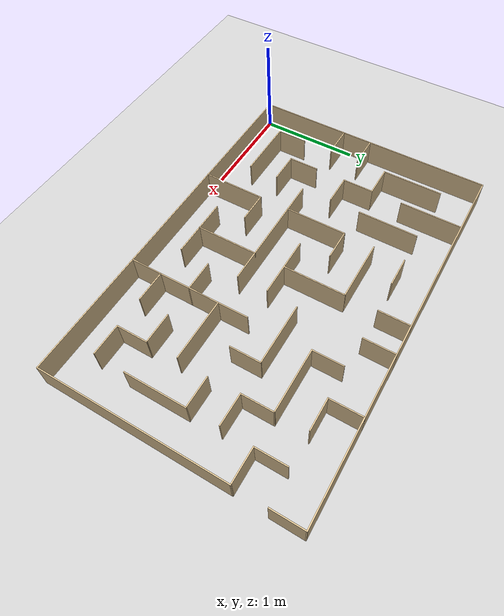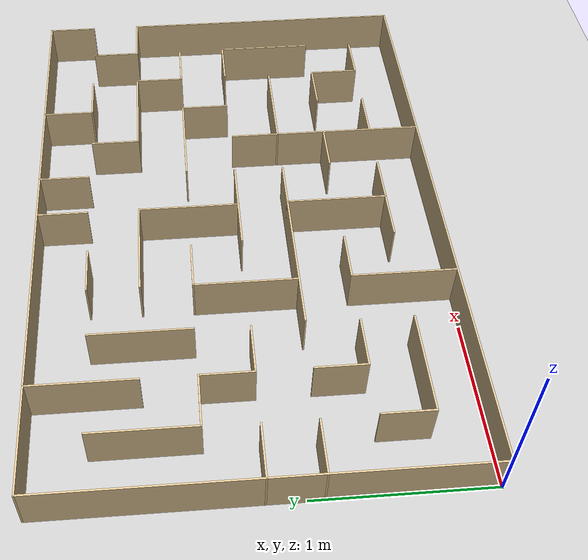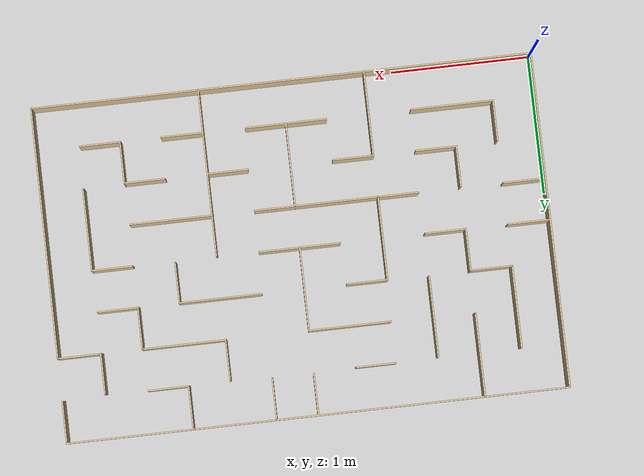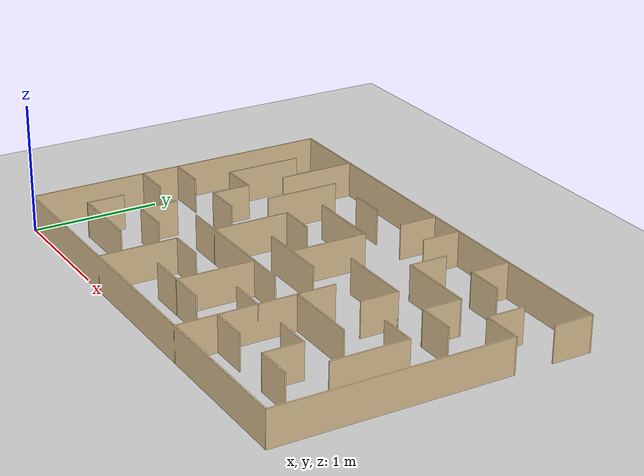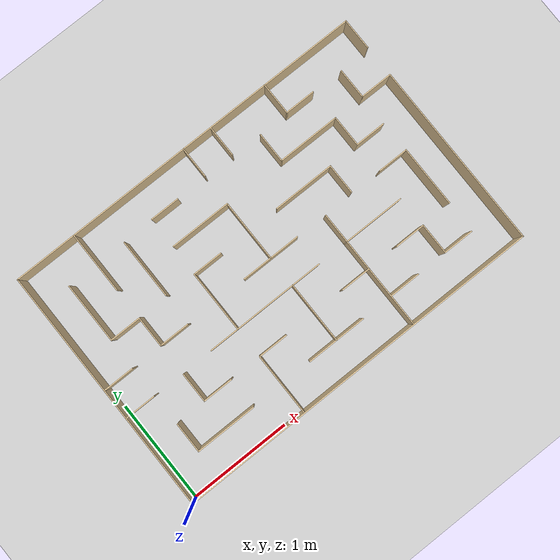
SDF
<?xml version="1.0" ?>
<sdf version="1.4">
  <world name="default">
    <scene>
      <ambient>0.5 0.5 0.5 1.0</ambient>
      <shadows>0</shadows>
    </scene>
    <include>
      <uri>model://ground_plane</uri>
    </include>
    <include>
      <uri>model://sun</uri>
    </include>

    <model name='mazeeeeee_tight'>
    <pose frame=''>1.80996 1.21 0 0 -0 0</pose>
    <link name='Wall_0'>
      <collision name='Wall_0_Collision'>
        <geometry>
          <box>
            <size>0.6 0.01 0.28</size>
          </box>
        </geometry>
        <pose frame=''>0 0 0.14 0 -0 0</pose>
      </collision>
      <visual name='Wall_0_Visual'>
        <pose frame=''>0 0 0.14 0 -0 0</pose>
        <geometry>
          <box>
            <size>0.6 0.01 0.28</size>
          </box>
        </geometry>
        <material>
          <script>
            <uri>file://media/materials/scripts/gazebo.material</uri>
            <name>Gazebo/Grey</name>
          </script>
          <ambient>0.921569 0.807843 0.615686 1</ambient>
        </material>
        <meta>
          <layer>0</layer>
        </meta>
      </visual>
      <pose frame=''>1.50004 -0.295 0 0 0 -1.5708</pose>
    </link>
    <link name='Wall_100'>
      <collision name='Wall_100_Collision'>
        <geometry>
          <box>
            <size>0.3 0.01 0.28</size>
          </box>
        </geometry>
        <pose frame=''>0 0 0.14 0 -0 0</pose>
      </collision>
      <visual name='Wall_100_Visual'>
        <pose frame=''>0 0 0.14 0 -0 0</pose>
        <geometry>
          <box>
            <size>0.3 0.01 0.28</size>
          </box>
        </geometry>
        <material>
          <script>
            <uri>file://media/materials/scripts/gazebo.material</uri>
            <name>Gazebo/Grey</name>
          </script>
          <ambient>0.921569 0.807843 0.615686 1</ambient>
        </material>
        <meta>
          <layer>0</layer>
        </meta>
      </visual>
      <pose frame=''>1.34504 -0.9 0 0 -0 0</pose>
    </link>
    <link name='Wall_11'>
      <collision name='Wall_11_Collision'>
        <geometry>
          <box>
            <size>0.32 0.01 0.28</size>
          </box>
        </geometry>
        <pose frame=''>0 0 0.14 0 -0 0</pose>
      </collision>
      <visual name='Wall_11_Visual'>
        <pose frame=''>0 0 0.14 0 -0 0</pose>
        <geometry>
          <box>
            <size>0.32 0.01 0.28</size>
          </box>
        </geometry>
        <material>
          <script>
            <uri>file://media/materials/scripts/gazebo.material</uri>
            <name>Gazebo/Grey</name>
          </script>
          <ambient>0.921569 0.807843 0.615686 1</ambient>
        </material>
        <meta>
          <layer>0</layer>
        </meta>
      </visual>
      <pose frame=''>0.900042 1.055 0 0 0 -1.5708</pose>
    </link>
    <link name='Wall_13'>
      <collision name='Wall_13_Collision'>
        <geometry>
          <box>
            <size>0.3 0.01 0.28</size>
          </box>
        </geometry>
        <pose frame=''>0 0 0.14 0 -0 0</pose>
      </collision>
      <visual name='Wall_13_Visual'>
        <pose frame=''>0 0 0.14 0 -0 0</pose>
        <geometry>
          <box>
            <size>0.3 0.01 0.28</size>
          </box>
        </geometry>
        <material>
          <script>
            <uri>file://media/materials/scripts/gazebo.material</uri>
            <name>Gazebo/Grey</name>
          </script>
          <ambient>0.921569 0.807843 0.615686 1</ambient>
        </material>
        <meta>
          <layer>0</layer>
        </meta>
      </visual>
      <pose frame=''>0.900042 0.155 0 0 0 -1.5708</pose>
    </link>
    <link name='Wall_15'>
      <collision name='Wall_15_Collision'>
        <geometry>
          <box>
            <size>0.6 0.01 0.28</size>
          </box>
        </geometry>
        <pose frame=''>0 0 0.14 0 -0 0</pose>
      </collision>
      <visual name='Wall_15_Visual'>
        <pose frame=''>0 0 0.14 0 -0 0</pose>
        <geometry>
          <box>
            <size>0.6 0.01 0.28</size>
          </box>
        </geometry>
        <material>
          <script>
            <uri>file://media/materials/scripts/gazebo.material</uri>
            <name>Gazebo/Grey</name>
          </script>
          <ambient>0.921569 0.807843 0.615686 1</ambient>
        </material>
        <meta>
          <layer>0</layer>
        </meta>
      </visual>
      <pose frame=''>0.605042 0.3 0 0 -0 0</pose>
    </link>
    <link name='Wall_18'>
      <collision name='Wall_18_Collision'>
        <geometry>
          <box>
            <size>0.3 0.01 0.28</size>
          </box>
        </geometry>
        <pose frame=''>0 0 0.14 0 -0 0</pose>
      </collision>
      <visual name='Wall_18_Visual'>
        <pose frame=''>0 0 0.14 0 -0 0</pose>
        <geometry>
          <box>
            <size>0.3 0.01 0.28</size>
          </box>
        </geometry>
        <material>
          <script>
            <uri>file://media/materials/scripts/gazebo.material</uri>
            <name>Gazebo/Grey</name>
          </script>
          <ambient>0.921569 0.807843 0.615686 1</ambient>
        </material>
        <meta>
          <layer>0</layer>
        </meta>
      </visual>
      <pose frame=''>-0.454958 -0.6 0 0 -0 0</pose>
    </link>
    <link name='Wall_2'>
      <collision name='Wall_2_Collision'>
        <geometry>
          <box>
            <size>0.3 0.01 0.28</size>
          </box>
        </geometry>
        <pose frame=''>0 0 0.14 0 -0 0</pose>
      </collision>
      <visual name='Wall_2_Visual'>
        <pose frame=''>0 0 0.14 0 -0 0</pose>
        <geometry>
          <box>
            <size>0.3 0.01 0.28</size>
          </box>
        </geometry>
        <material>
          <script>
            <uri>file://media/materials/scripts/gazebo.material</uri>
            <name>Gazebo/Grey</name>
          </script>
          <ambient>0.921569 0.807843 0.615686 1</ambient>
        </material>
        <meta>
          <layer>0</layer>
        </meta>
      </visual>
      <pose frame=''>1.35504 0 0 0 -0 0</pose>
    </link>
    <link name='Wall_20'>
      <collision name='Wall_20_Collision'>
        <geometry>
          <box>
            <size>0.62 0.01 0.28</size>
          </box>
        </geometry>
        <pose frame=''>0 0 0.14 0 -0 0</pose>
      </collision>
      <visual name='Wall_20_Visual'>
        <pose frame=''>0 0 0.14 0 -0 0</pose>
        <geometry>
          <box>
            <size>0.62 0.01 0.28</size>
          </box>
        </geometry>
        <material>
          <script>
            <uri>file://media/materials/scripts/gazebo.material</uri>
            <name>Gazebo/Grey</name>
          </script>
          <ambient>0.921569 0.807843 0.615686 1</ambient>
        </material>
        <meta>
          <layer>0</layer>
        </meta>
      </visual>
      <pose frame=''>-0.599958 -0.905 0 0 -0 1.5708</pose>
    </link>
    <link name='Wall_22'>
      <collision name='Wall_22_Collision'>
        <geometry>
          <box>
            <size>0.29 0.01 0.28</size>
          </box>
        </geometry>
        <pose frame=''>0 0 0.14 0 -0 0</pose>
      </collision>
      <visual name='Wall_22_Visual'>
        <pose frame=''>0 0 0.14 0 -0 0</pose>
        <geometry>
          <box>
            <size>0.29 0.01 0.28</size>
          </box>
        </geometry>
        <material>
          <script>
            <uri>file://media/materials/scripts/gazebo.material</uri>
            <name>Gazebo/Grey</name>
          </script>
          <ambient>0.921569 0.807843 0.615686 1</ambient>
        </material>
        <meta>
          <layer>0</layer>
        </meta>
      </visual>
      <pose frame=''>-0.449958 0.9 0 0 -0 0</pose>
    </link>
    <link name='Wall_24'>
      <collision name='Wall_24_Collision'>
        <geometry>
          <box>
            <size>0.59 0.01 0.28</size>
          </box>
        </geometry>
        <pose frame=''>0 0 0.14 0 -0 0</pose>
      </collision>
      <visual name='Wall_24_Visual'>
        <pose frame=''>0 0 0.14 0 -0 0</pose>
        <geometry>
          <box>
            <size>0.59 0.01 0.28</size>
          </box>
        </geometry>
        <material>
          <script>
            <uri>file://media/materials/scripts/gazebo.material</uri>
            <name>Gazebo/Grey</name>
          </script>
          <ambient>0.921569 0.807843 0.615686 1</ambient>
        </material>
        <meta>
          <layer>0</layer>
        </meta>
      </visual>
      <pose frame=''>-0.899958 0.6 0 0 0 -1.5708</pose>
    </link>
    <link name='Wall_26'>
      <collision name='Wall_26_Collision'>
        <geometry>
          <box>
            <size>0.3 0.01 0.28</size>
          </box>
        </geometry>
        <pose frame=''>0 0 0.14 0 -0 0</pose>
      </collision>
      <visual name='Wall_26_Visual'>
        <pose frame=''>0 0 0.14 0 -0 0</pose>
        <geometry>
          <box>
            <size>0.3 0.01 0.28</size>
          </box>
        </geometry>
        <material>
          <script>
            <uri>file://media/materials/scripts/gazebo.material</uri>
            <name>Gazebo/Grey</name>
          </script>
          <ambient>0.921569 0.807843 0.615686 1</ambient>
        </material>
        <meta>
          <layer>0</layer>
        </meta>
      </visual>
      <pose frame=''>-1.05496 0 0 0 -0 0</pose>
    </link>
    <link name='Wall_28'>
      <collision name='Wall_28_Collision'>
        <geometry>
          <box>
            <size>0.31 0.01 0.28</size>
          </box>
        </geometry>
        <pose frame=''>0 0 0.14 0 -0 0</pose>
      </collision>
      <visual name='Wall_28_Visual'>
        <pose frame=''>0 0 0.14 0 -0 0</pose>
        <geometry>
          <box>
            <size>0.31 0.01 0.28</size>
          </box>
        </geometry>
        <material>
          <script>
            <uri>file://media/materials/scripts/gazebo.material</uri>
            <name>Gazebo/Grey</name>
          </script>
          <ambient>0.921569 0.807843 0.615686 1</ambient>
        </material>
        <meta>
          <layer>0</layer>
        </meta>
      </visual>
      <pose frame=''>-1.19996 0.15 0 0 0 -1.5708</pose>
    </link>
    <link name='Wall_30'>
      <collision name='Wall_30_Collision'>
        <geometry>
          <box>
            <size>0.31 0.01 0.28</size>
          </box>
        </geometry>
        <pose frame=''>0 0 0.14 0 -0 0</pose>
      </collision>
      <visual name='Wall_30_Visual'>
        <pose frame=''>0 0 0.14 0 -0 0</pose>
        <geometry>
          <box>
            <size>0.31 0.01 0.28</size>
          </box>
        </geometry>
        <material>
          <script>
            <uri>file://media/materials/scripts/gazebo.material</uri>
            <name>Gazebo/Grey</name>
          </script>
          <ambient>0.921569 0.807843 0.615686 1</ambient>
        </material>
        <meta>
          <layer>0</layer>
        </meta>
      </visual>
      <pose frame=''>-1.34996 0.3 0 0 -0 0</pose>
    </link>
    <link name='Wall_32'>
      <collision name='Wall_32_Collision'>
        <geometry>
          <box>
            <size>0.6 0.01 0.28</size>
          </box>
        </geometry>
        <pose frame=''>0 0 0.14 0 -0 0</pose>
      </collision>
      <visual name='Wall_32_Visual'>
        <pose frame=''>0 0 0.14 0 -0 0</pose>
        <geometry>
          <box>
            <size>0.6 0.01 0.28</size>
          </box>
        </geometry>
        <material>
          <script>
            <uri>file://media/materials/scripts/gazebo.material</uri>
            <name>Gazebo/Grey</name>
          </script>
          <ambient>0.921569 0.807843 0.615686 1</ambient>
        </material>
        <meta>
          <layer>0</layer>
        </meta>
      </visual>
      <pose frame=''>-1.49996 0.595 0 0 0 -1.5708</pose>
    </link>
    <link name='Wall_34'>
      <collision name='Wall_34_Collision'>
        <geometry>
          <box>
            <size>0.3 0.01 0.28</size>
          </box>
        </geometry>
        <pose frame=''>0 0 0.14 0 -0 0</pose>
      </collision>
      <visual name='Wall_34_Visual'>
        <pose frame=''>0 0 0.14 0 -0 0</pose>
        <geometry>
          <box>
            <size>0.3 0.01 0.28</size>
          </box>
        </geometry>
        <material>
          <script>
            <uri>file://media/materials/scripts/gazebo.material</uri>
            <name>Gazebo/Grey</name>
          </script>
          <ambient>0.921569 0.807843 0.615686 1</ambient>
        </material>
        <meta>
          <layer>0</layer>
        </meta>
      </visual>
      <pose frame=''>-1.05496 -0.6 0 0 -0 0</pose>
    </link>
    <link name='Wall_36'>
      <collision name='Wall_36_Collision'>
        <geometry>
          <box>
            <size>0.3 0.01 0.28</size>
          </box>
        </geometry>
        <pose frame=''>0 0 0.14 0 -0 0</pose>
      </collision>
      <visual name='Wall_36_Visual'>
        <pose frame=''>0 0 0.14 0 -0 0</pose>
        <geometry>
          <box>
            <size>0.3 0.01 0.28</size>
          </box>
        </geometry>
        <material>
          <script>
            <uri>file://media/materials/scripts/gazebo.material</uri>
            <name>Gazebo/Grey</name>
          </script>
          <ambient>0.921569 0.807843 0.615686 1</ambient>
        </material>
        <meta>
          <layer>0</layer>
        </meta>
      </visual>
      <pose frame=''>-1.19996 -0.455 0 0 0 -1.5708</pose>
    </link>
    <link name='Wall_38'>
      <collision name='Wall_38_Collision'>
        <geometry>
          <box>
            <size>0.6 0.01 0.28</size>
          </box>
        </geometry>
        <pose frame=''>0 0 0.14 0 -0 0</pose>
      </collision>
      <visual name='Wall_38_Visual'>
        <pose frame=''>0 0 0.14 0 -0 0</pose>
        <geometry>
          <box>
            <size>0.6 0.01 0.28</size>
          </box>
        </geometry>
        <material>
          <script>
            <uri>file://media/materials/scripts/gazebo.material</uri>
            <name>Gazebo/Grey</name>
          </script>
          <ambient>0.921569 0.807843 0.615686 1</ambient>
        </material>
        <meta>
          <layer>0</layer>
        </meta>
      </visual>
      <pose frame=''>-1.20496 -0.9 0 0 -0 0</pose>
    </link>
    <link name='Wall_40'>
      <collision name='Wall_40_Collision'>
        <geometry>
          <box>
            <size>0.3 0.01 0.28</size>
          </box>
        </geometry>
        <pose frame=''>0 0 0.14 0 -0 0</pose>
      </collision>
      <visual name='Wall_40_Visual'>
        <pose frame=''>0 0 0.14 0 -0 0</pose>
        <geometry>
          <box>
            <size>0.3 0.01 0.28</size>
          </box>
        </geometry>
        <material>
          <script>
            <uri>file://media/materials/scripts/gazebo.material</uri>
            <name>Gazebo/Grey</name>
          </script>
          <ambient>0.921569 0.807843 0.615686 1</ambient>
        </material>
        <meta>
          <layer>0</layer>
        </meta>
      </visual>
      <pose frame=''>-1.49996 -0.755 0 0 0 -1.5708</pose>
    </link>
    <link name='Wall_42'>
      <collision name='Wall_42_Collision'>
        <geometry>
          <box>
            <size>0.31 0.01 0.28</size>
          </box>
        </geometry>
        <pose frame=''>0 0 0.14 0 -0 0</pose>
      </collision>
      <visual name='Wall_42_Visual'>
        <pose frame=''>0 0 0.14 0 -0 0</pose>
        <geometry>
          <box>
            <size>0.31 0.01 0.28</size>
          </box>
        </geometry>
        <material>
          <script>
            <uri>file://media/materials/scripts/gazebo.material</uri>
            <name>Gazebo/Grey</name>
          </script>
          <ambient>0.921569 0.807843 0.615686 1</ambient>
        </material>
        <meta>
          <layer>0</layer>
        </meta>
      </visual>
      <pose frame=''>0.300042 1.06 0 0 0 -1.5708</pose>
    </link>
    <link name='Wall_44'>
      <collision name='Wall_44_Collision'>
        <geometry>
          <box>
            <size>0.31 0.01 0.28</size>
          </box>
        </geometry>
        <pose frame=''>0 0 0.14 0 -0 0</pose>
      </collision>
      <visual name='Wall_44_Visual'>
        <pose frame=''>0 0 0.14 0 -0 0</pose>
        <geometry>
          <box>
            <size>0.31 0.01 0.28</size>
          </box>
        </geometry>
        <material>
          <script>
            <uri>file://media/materials/scripts/gazebo.material</uri>
            <name>Gazebo/Grey</name>
          </script>
          <ambient>0.921569 0.807843 0.615686 1</ambient>
        </material>
        <meta>
          <layer>0</layer>
        </meta>
      </visual>
      <pose frame=''>4.2e-05 1.06 0 0 0 -1.5708</pose>
    </link>
    <link name='Wall_46'>
      <collision name='Wall_46_Collision'>
        <geometry>
          <box>
            <size>0.61 0.01 0.28</size>
          </box>
        </geometry>
        <pose frame=''>0 0 0.14 0 -0 0</pose>
      </collision>
      <visual name='Wall_46_Visual'>
        <pose frame=''>0 0 0.14 0 -0 0</pose>
        <geometry>
          <box>
            <size>0.61 0.01 0.28</size>
          </box>
        </geometry>
        <material>
          <script>
            <uri>file://media/materials/scripts/gazebo.material</uri>
            <name>Gazebo/Grey</name>
          </script>
          <ambient>0.921569 0.807843 0.615686 1</ambient>
        </material>
        <meta>
          <layer>0</layer>
        </meta>
      </visual>
      <pose frame=''>-1.19996 0.91 0 0 0 -1.5708</pose>
    </link>
    <link name='Wall_48'>
      <collision name='Wall_48_Collision'>
        <geometry>
          <box>
            <size>0.310167 0.01 0.28</size>
          </box>
        </geometry>
        <pose frame=''>0 0 0.14 0 -0 0</pose>
      </collision>
      <visual name='Wall_48_Visual'>
        <pose frame=''>0 0 0.14 0 -0 0</pose>
        <geometry>
          <box>
            <size>0.310167 0.01 0.28</size>
          </box>
        </geometry>
        <material>
          <script>
            <uri>file://media/materials/scripts/gazebo.material</uri>
            <name>Gazebo/Grey</name>
          </script>
          <ambient>0.921569 0.807843 0.615686 1</ambient>
        </material>
        <meta>
          <layer>0</layer>
        </meta>
      </visual>
      <pose frame=''>-1.65996 -0.3 0 0 -0 0</pose>
    </link>
    <link name='Wall_5'>
      <collision name='Wall_5_Collision'>
        <geometry>
          <box>
            <size>0.32 0.01 0.28</size>
          </box>
        </geometry>
        <pose frame=''>0 0 0.14 0 -0 0</pose>
      </collision>
      <visual name='Wall_5_Visual'>
        <pose frame=''>0 0 0.14 0 -0 0</pose>
        <geometry>
          <box>
            <size>0.32 0.01 0.28</size>
          </box>
        </geometry>
        <material>
          <script>
            <uri>file://media/materials/scripts/gazebo.material</uri>
            <name>Gazebo/Grey</name>
          </script>
          <ambient>0.921569 0.807843 0.615686 1</ambient>
        </material>
        <meta>
          <layer>0</layer>
        </meta>
      </visual>
      <pose frame=''>1.65504 0.6 0 0 -0 0</pose>
    </link>
    <link name='Wall_50'>
      <collision name='Wall_50_Collision'>
        <geometry>
          <box>
            <size>1.82 0.01 0.28</size>
          </box>
        </geometry>
        <pose frame=''>0 0 0.14 0 -0 0</pose>
      </collision>
      <visual name='Wall_50_Visual'>
        <pose frame=''>0 0 0.14 0 -0 0</pose>
        <geometry>
          <box>
            <size>1.82 0.01 0.28</size>
          </box>
        </geometry>
        <material>
          <script>
            <uri>file://media/materials/scripts/gazebo.material</uri>
            <name>Gazebo/Grey</name>
          </script>
          <ambient>0.921569 0.807843 0.615686 1</ambient>
        </material>
        <meta>
          <layer>0</layer>
        </meta>
      </visual>
      <pose frame=''>1.81004 -0.305 0 0 -0 1.5708</pose>
    </link>
    <link name='Wall_52'>
      <collision name='Wall_52_Collision'>
        <geometry>
          <box>
            <size>0.31 0.01 0.28</size>
          </box>
        </geometry>
        <pose frame=''>0 0 0.14 0 -0 0</pose>
      </collision>
      <visual name='Wall_52_Visual'>
        <pose frame=''>0 0 0.14 0 -0 0</pose>
        <geometry>
          <box>
            <size>0.31 0.01 0.28</size>
          </box>
        </geometry>
        <material>
          <script>
            <uri>file://media/materials/scripts/gazebo.material</uri>
            <name>Gazebo/Grey</name>
          </script>
          <ambient>0.921569 0.807843 0.615686 1</ambient>
        </material>
        <meta>
          <layer>0</layer>
        </meta>
      </visual>
      <pose frame=''>-1.65996 0 0 0 -0 0</pose>
    </link>
    <link name='Wall_54'>
      <collision name='Wall_54_Collision'>
        <geometry>
          <box>
            <size>2.43 0.01 0.28</size>
          </box>
        </geometry>
        <pose frame=''>0 0 0.14 0 -0 0</pose>
      </collision>
      <visual name='Wall_54_Visual'>
        <pose frame=''>0 0 0.14 0 -0 0</pose>
        <geometry>
          <box>
            <size>2.43 0.01 0.28</size>
          </box>
        </geometry>
        <material>
          <script>
            <uri>file://media/materials/scripts/gazebo.material</uri>
            <name>Gazebo/Grey</name>
          </script>
          <ambient>0.921569 0.807843 0.615686 1</ambient>
        </material>
        <meta>
          <layer>0</layer>
        </meta>
      </visual>
      <pose frame=''>-1.80996 0 0 0 0 -1.5708</pose>
    </link>
    <link name='Wall_56'>
      <collision name='Wall_56_Collision'>
        <geometry>
          <box>
            <size>3.63 0.01 0.28</size>
          </box>
        </geometry>
        <pose frame=''>0 0 0.14 0 -0 0</pose>
      </collision>
      <visual name='Wall_56_Visual'>
        <pose frame=''>0 0 0.14 0 -0 0</pose>
        <geometry>
          <box>
            <size>3.63 0.01 0.28</size>
          </box>
        </geometry>
        <material>
          <script>
            <uri>file://media/materials/scripts/gazebo.material</uri>
            <name>Gazebo/Grey</name>
          </script>
          <ambient>0.921569 0.807843 0.615686 1</ambient>
        </material>
        <meta>
          <layer>0</layer>
        </meta>
      </visual>
      <pose frame=''>4.2e-05 1.21 0 0 -0 3.14159</pose>
    </link>
    <link name='Wall_58'>
      <collision name='Wall_58_Collision'>
        <geometry>
          <box>
            <size>0.31 0.01 0.28</size>
          </box>
        </geometry>
        <pose frame=''>0 0 0.14 0 -0 0</pose>
      </collision>
      <visual name='Wall_58_Visual'>
        <pose frame=''>0 0 0.14 0 -0 0</pose>
        <geometry>
          <box>
            <size>0.31 0.01 0.28</size>
          </box>
        </geometry>
        <material>
          <script>
            <uri>file://media/materials/scripts/gazebo.material</uri>
            <name>Gazebo/Grey</name>
          </script>
          <ambient>0.921569 0.807843 0.615686 1</ambient>
        </material>
        <meta>
          <layer>0</layer>
        </meta>
      </visual>
      <pose frame=''>1.81004 1.06 0 0 -0 1.5708</pose>
    </link>
    <link name='Wall_60'>
      <collision name='Wall_60_Collision'>
        <geometry>
          <box>
            <size>3.63 0.01 0.28</size>
          </box>
        </geometry>
        <pose frame=''>0 0 0.14 0 -0 0</pose>
      </collision>
      <visual name='Wall_60_Visual'>
        <pose frame=''>0 0 0.14 0 -0 0</pose>
        <geometry>
          <box>
            <size>3.63 0.01 0.28</size>
          </box>
        </geometry>
        <material>
          <script>
            <uri>file://media/materials/scripts/gazebo.material</uri>
            <name>Gazebo/Grey</name>
          </script>
          <ambient>0.921569 0.807843 0.615686 1</ambient>
        </material>
        <meta>
          <layer>0</layer>
        </meta>
      </visual>
      <pose frame=''>4.2e-05 -1.21 0 0 -0 0</pose>
    </link>
    <link name='Wall_63'>
      <collision name='Wall_63_Collision'>
        <geometry>
          <box>
            <size>0.3 0.01 0.28</size>
          </box>
        </geometry>
        <pose frame=''>0 0 0.14 0 -0 0</pose>
      </collision>
      <visual name='Wall_63_Visual'>
        <pose frame=''>0 0 0.14 0 -0 0</pose>
        <geometry>
          <box>
            <size>0.3 0.01 0.28</size>
          </box>
        </geometry>
        <material>
          <script>
            <uri>file://media/materials/scripts/gazebo.material</uri>
            <name>Gazebo/Grey</name>
          </script>
          <ambient>0.921569 0.807843 0.615686 1</ambient>
        </material>
        <meta>
          <layer>0</layer>
        </meta>
      </visual>
      <pose frame=''>0.600042 0.745 0 0 0 -1.5708</pose>
    </link>
    <link name='Wall_65'>
      <collision name='Wall_65_Collision'>
        <geometry>
          <box>
            <size>0.61 0.01 0.28</size>
          </box>
        </geometry>
        <pose frame=''>0 0 0.14 0 -0 0</pose>
      </collision>
      <visual name='Wall_65_Visual'>
        <pose frame=''>0 0 0.14 0 -0 0</pose>
        <geometry>
          <box>
            <size>0.61 0.01 0.28</size>
          </box>
        </geometry>
        <material>
          <script>
            <uri>file://media/materials/scripts/gazebo.material</uri>
            <name>Gazebo/Grey</name>
          </script>
          <ambient>0.921569 0.807843 0.615686 1</ambient>
        </material>
        <meta>
          <layer>0</layer>
        </meta>
      </visual>
      <pose frame=''>0.900042 0.6 0 0 -0 0</pose>
    </link>
    <link name='Wall_68'>
      <collision name='Wall_68_Collision'>
        <geometry>
          <box>
            <size>0.31 0.01 0.28</size>
          </box>
        </geometry>
        <pose frame=''>0 0 0.14 0 -0 0</pose>
      </collision>
      <visual name='Wall_68_Visual'>
        <pose frame=''>0 0 0.14 0 -0 0</pose>
        <geometry>
          <box>
            <size>0.31 0.01 0.28</size>
          </box>
        </geometry>
        <material>
          <script>
            <uri>file://media/materials/scripts/gazebo.material</uri>
            <name>Gazebo/Grey</name>
          </script>
          <ambient>0.921569 0.807843 0.615686 1</ambient>
        </material>
        <meta>
          <layer>0</layer>
        </meta>
      </visual>
      <pose frame=''>1.20004 0.45 0 0 0 -1.5708</pose>
    </link>
    <link name='Wall_7'>
      <collision name='Wall_7_Collision'>
        <geometry>
          <box>
            <size>0.3 0.01 0.28</size>
          </box>
        </geometry>
        <pose frame=''>0 0 0.14 0 -0 0</pose>
      </collision>
      <visual name='Wall_7_Visual'>
        <pose frame=''>0 0 0.14 0 -0 0</pose>
        <geometry>
          <box>
            <size>0.3 0.01 0.28</size>
          </box>
        </geometry>
        <material>
          <script>
            <uri>file://media/materials/scripts/gazebo.material</uri>
            <name>Gazebo/Grey</name>
          </script>
          <ambient>0.921569 0.807843 0.615686 1</ambient>
        </material>
        <meta>
          <layer>0</layer>
        </meta>
      </visual>
      <pose frame=''>1.50004 0.745 0 0 0 -1.5708</pose>
    </link>
    <link name='Wall_70'>
      <collision name='Wall_70_Collision'>
        <geometry>
          <box>
            <size>0.3 0.01 0.28</size>
          </box>
        </geometry>
        <pose frame=''>0 0 0.14 0 -0 0</pose>
      </collision>
      <visual name='Wall_70_Visual'>
        <pose frame=''>0 0 0.14 0 -0 0</pose>
        <geometry>
          <box>
            <size>0.3 0.01 0.28</size>
          </box>
        </geometry>
        <material>
          <script>
            <uri>file://media/materials/scripts/gazebo.material</uri>
            <name>Gazebo/Grey</name>
          </script>
          <ambient>0.921569 0.807843 0.615686 1</ambient>
        </material>
        <meta>
          <layer>0</layer>
        </meta>
      </visual>
      <pose frame=''>1.34504 0.3 0 0 -0 0</pose>
    </link>
    <link name='Wall_72'>
      <collision name='Wall_72_Collision'>
        <geometry>
          <box>
            <size>0.3 0.01 0.28</size>
          </box>
        </geometry>
        <pose frame=''>0 0 0.14 0 -0 0</pose>
      </collision>
      <visual name='Wall_72_Visual'>
        <pose frame=''>0 0 0.14 0 -0 0</pose>
        <geometry>
          <box>
            <size>0.3 0.01 0.28</size>
          </box>
        </geometry>
        <material>
          <script>
            <uri>file://media/materials/scripts/gazebo.material</uri>
            <name>Gazebo/Grey</name>
          </script>
          <ambient>0.921569 0.807843 0.615686 1</ambient>
        </material>
        <meta>
          <layer>0</layer>
        </meta>
      </visual>
      <pose frame=''>0.455042 -0.6 0 0 -0 0</pose>
    </link>
    <link name='Wall_74'>
      <collision name='Wall_74_Collision'>
        <geometry>
          <box>
            <size>0.6 0.01 0.28</size>
          </box>
        </geometry>
        <pose frame=''>0 0 0.14 0 -0 0</pose>
      </collision>
      <visual name='Wall_74_Visual'>
        <pose frame=''>0 0 0.14 0 -0 0</pose>
        <geometry>
          <box>
            <size>0.6 0.01 0.28</size>
          </box>
        </geometry>
        <material>
          <script>
            <uri>file://media/materials/scripts/gazebo.material</uri>
            <name>Gazebo/Grey</name>
          </script>
          <ambient>0.921569 0.807843 0.615686 1</ambient>
        </material>
        <meta>
          <layer>0</layer>
        </meta>
      </visual>
      <pose frame=''>0.895042 -0.3 0 0 -0 0</pose>
    </link>
    <link name='Wall_76'>
      <collision name='Wall_76_Collision'>
        <geometry>
          <box>
            <size>0.31 0.01 0.28</size>
          </box>
        </geometry>
        <pose frame=''>0 0 0.14 0 -0 0</pose>
      </collision>
      <visual name='Wall_76_Visual'>
        <pose frame=''>0 0 0.14 0 -0 0</pose>
        <geometry>
          <box>
            <size>0.31 0.01 0.28</size>
          </box>
        </geometry>
        <material>
          <script>
            <uri>file://media/materials/scripts/gazebo.material</uri>
            <name>Gazebo/Grey</name>
          </script>
          <ambient>0.921569 0.807843 0.615686 1</ambient>
        </material>
        <meta>
          <layer>0</layer>
        </meta>
      </visual>
      <pose frame=''>0.750042 -0.9 0 0 -0 0</pose>
    </link>
    <link name='Wall_78'>
      <collision name='Wall_78_Collision'>
        <geometry>
          <box>
            <size>1.21 0.01 0.28</size>
          </box>
        </geometry>
        <pose frame=''>0 0 0.14 0 -0 0</pose>
      </collision>
      <visual name='Wall_78_Visual'>
        <pose frame=''>0 0 0.14 0 -0 0</pose>
        <geometry>
          <box>
            <size>1.21 0.01 0.28</size>
          </box>
        </geometry>
        <material>
          <script>
            <uri>file://media/materials/scripts/gazebo.material</uri>
            <name>Gazebo/Grey</name>
          </script>
          <ambient>0.921569 0.807843 0.615686 1</ambient>
        </material>
        <meta>
          <layer>0</layer>
        </meta>
      </visual>
      <pose frame=''>0.600042 -0.61 0 0 0 -1.5708</pose>
    </link>
    <link name='Wall_80'>
      <collision name='Wall_80_Collision'>
        <geometry>
          <box>
            <size>0.3 0.01 0.28</size>
          </box>
        </geometry>
        <pose frame=''>0 0 0.14 0 -0 0</pose>
      </collision>
      <visual name='Wall_80_Visual'>
        <pose frame=''>0 0 0.14 0 -0 0</pose>
        <geometry>
          <box>
            <size>0.3 0.01 0.28</size>
          </box>
        </geometry>
        <material>
          <script>
            <uri>file://media/materials/scripts/gazebo.material</uri>
            <name>Gazebo/Grey</name>
          </script>
          <ambient>0.921569 0.807843 0.615686 1</ambient>
        </material>
        <meta>
          <layer>0</layer>
        </meta>
      </visual>
      <pose frame=''>-0.454958 0.3 0 0 -0 0</pose>
    </link>
    <link name='Wall_82'>
      <collision name='Wall_82_Collision'>
        <geometry>
          <box>
            <size>0.59 0.01 0.28</size>
          </box>
        </geometry>
        <pose frame=''>0 0 0.14 0 -0 0</pose>
      </collision>
      <visual name='Wall_82_Visual'>
        <pose frame=''>0 0 0.14 0 -0 0</pose>
        <geometry>
          <box>
            <size>0.59 0.01 0.28</size>
          </box>
        </geometry>
        <material>
          <script>
            <uri>file://media/materials/scripts/gazebo.material</uri>
            <name>Gazebo/Grey</name>
          </script>
          <ambient>0.921569 0.807843 0.615686 1</ambient>
        </material>
        <meta>
          <layer>0</layer>
        </meta>
      </visual>
      <pose frame=''>4.2e-05 0 0 0 -0 0</pose>
    </link>
    <link name='Wall_84'>
      <collision name='Wall_84_Collision'>
        <geometry>
          <box>
            <size>0.61 0.01 0.28</size>
          </box>
        </geometry>
        <pose frame=''>0 0 0.14 0 -0 0</pose>
      </collision>
      <visual name='Wall_84_Visual'>
        <pose frame=''>0 0 0.14 0 -0 0</pose>
        <geometry>
          <box>
            <size>0.61 0.01 0.28</size>
          </box>
        </geometry>
        <material>
          <script>
            <uri>file://media/materials/scripts/gazebo.material</uri>
            <name>Gazebo/Grey</name>
          </script>
          <ambient>0.921569 0.807843 0.615686 1</ambient>
        </material>
        <meta>
          <layer>0</layer>
        </meta>
      </visual>
      <pose frame=''>4.2e-05 0.3 0 0 0 -1.5708</pose>
    </link>
    <link name='Wall_86'>
      <collision name='Wall_86_Collision'>
        <geometry>
          <box>
            <size>0.6 0.01 0.28</size>
          </box>
        </geometry>
        <pose frame=''>0 0 0.14 0 -0 0</pose>
      </collision>
      <visual name='Wall_86_Visual'>
        <pose frame=''>0 0 0.14 0 -0 0</pose>
        <geometry>
          <box>
            <size>0.6 0.01 0.28</size>
          </box>
        </geometry>
        <material>
          <script>
            <uri>file://media/materials/scripts/gazebo.material</uri>
            <name>Gazebo/Grey</name>
          </script>
          <ambient>0.921569 0.807843 0.615686 1</ambient>
        </material>
        <meta>
          <layer>0</layer>
        </meta>
      </visual>
      <pose frame=''>-0.294958 0.6 0 0 -0 0</pose>
    </link>
    <link name='Wall_88'>
      <collision name='Wall_88_Collision'>
        <geometry>
          <box>
            <size>0.59 0.01 0.28</size>
          </box>
        </geometry>
        <pose frame=''>0 0 0.14 0 -0 0</pose>
      </collision>
      <visual name='Wall_88_Visual'>
        <pose frame=''>0 0 0.14 0 -0 0</pose>
        <geometry>
          <box>
            <size>0.59 0.01 0.28</size>
          </box>
        </geometry>
        <material>
          <script>
            <uri>file://media/materials/scripts/gazebo.material</uri>
            <name>Gazebo/Grey</name>
          </script>
          <ambient>0.921569 0.807843 0.615686 1</ambient>
        </material>
        <meta>
          <layer>0</layer>
        </meta>
      </visual>
      <pose frame=''>4.2e-05 -0.9 0 0 -0 0</pose>
    </link>
    <link name='Wall_9'>
      <collision name='Wall_9_Collision'>
        <geometry>
          <box>
            <size>0.3 0.01 0.28</size>
          </box>
        </geometry>
        <pose frame=''>0 0 0.14 0 -0 0</pose>
      </collision>
      <visual name='Wall_9_Visual'>
        <pose frame=''>0 0 0.14 0 -0 0</pose>
        <geometry>
          <box>
            <size>0.3 0.01 0.28</size>
          </box>
        </geometry>
        <material>
          <script>
            <uri>file://media/materials/scripts/gazebo.material</uri>
            <name>Gazebo/Grey</name>
          </script>
          <ambient>0.921569 0.807843 0.615686 1</ambient>
        </material>
        <meta>
          <layer>0</layer>
        </meta>
      </visual>
      <pose frame=''>1.04504 0.9 0 0 -0 0</pose>
    </link>
    <link name='Wall_90'>
      <collision name='Wall_90_Collision'>
        <geometry>
          <box>
            <size>0.61 0.01 0.28</size>
          </box>
        </geometry>
        <pose frame=''>0 0 0.14 0 -0 0</pose>
      </collision>
      <visual name='Wall_90_Visual'>
        <pose frame=''>0 0 0.14 0 -0 0</pose>
        <geometry>
          <box>
            <size>0.61 0.01 0.28</size>
          </box>
        </geometry>
        <material>
          <script>
            <uri>file://media/materials/scripts/gazebo.material</uri>
            <name>Gazebo/Grey</name>
          </script>
          <ambient>0.921569 0.807843 0.615686 1</ambient>
        </material>
        <meta>
          <layer>0</layer>
        </meta>
      </visual>
      <pose frame=''>4.2e-05 -0.6 0 0 0 -1.5708</pose>
    </link>
    <link name='Wall_92'>
      <collision name='Wall_92_Collision'>
        <geometry>
          <box>
            <size>1.19 0.01 0.28</size>
          </box>
        </geometry>
        <pose frame=''>0 0 0.14 0 -0 0</pose>
      </collision>
      <visual name='Wall_92_Visual'>
        <pose frame=''>0 0 0.14 0 -0 0</pose>
        <geometry>
          <box>
            <size>1.19 0.01 0.28</size>
          </box>
        </geometry>
        <material>
          <script>
            <uri>file://media/materials/scripts/gazebo.material</uri>
            <name>Gazebo/Grey</name>
          </script>
          <ambient>0.921569 0.807843 0.615686 1</ambient>
        </material>
        <meta>
          <layer>0</layer>
        </meta>
      </visual>
      <pose frame=''>-0.299958 -0.3 0 0 -0 0</pose>
    </link>
    <link name='Wall_94'>
      <collision name='Wall_94_Collision'>
        <geometry>
          <box>
            <size>0.61 0.01 0.28</size>
          </box>
        </geometry>
        <pose frame=''>0 0 0.14 0 -0 0</pose>
      </collision>
      <visual name='Wall_94_Visual'>
        <pose frame=''>0 0 0.14 0 -0 0</pose>
        <geometry>
          <box>
            <size>0.61 0.01 0.28</size>
          </box>
        </geometry>
        <material>
          <script>
            <uri>file://media/materials/scripts/gazebo.material</uri>
            <name>Gazebo/Grey</name>
          </script>
          <ambient>0.921569 0.807843 0.615686 1</ambient>
        </material>
        <meta>
          <layer>0</layer>
        </meta>
      </visual>
      <pose frame=''>-0.599958 0 0 0 0 -1.5708</pose>
    </link>
    <link name='Wall_96'>
      <collision name='Wall_96_Collision'>
        <geometry>
          <box>
            <size>0.3 0.01 0.28</size>
          </box>
        </geometry>
        <pose frame=''>0 0 0.14 0 -0 0</pose>
      </collision>
      <visual name='Wall_96_Visual'>
        <pose frame=''>0 0 0.14 0 -0 0</pose>
        <geometry>
          <box>
            <size>0.3 0.01 0.28</size>
          </box>
        </geometry>
        <material>
          <script>
            <uri>file://media/materials/scripts/gazebo.material</uri>
            <name>Gazebo/Grey</name>
          </script>
          <ambient>0.921569 0.807843 0.615686 1</ambient>
        </material>
        <meta>
          <layer>0</layer>
        </meta>
      </visual>
      <pose frame=''>1.05504 -0.6 0 0 -0 0</pose>
    </link>
    <link name='Wall_98'>
      <collision name='Wall_98_Collision'>
        <geometry>
          <box>
            <size>0.31 0.01 0.28</size>
          </box>
        </geometry>
        <pose frame=''>0 0 0.14 0 -0 0</pose>
      </collision>
      <visual name='Wall_98_Visual'>
        <pose frame=''>0 0 0.14 0 -0 0</pose>
        <geometry>
          <box>
            <size>0.31 0.01 0.28</size>
          </box>
        </geometry>
        <material>
          <script>
            <uri>file://media/materials/scripts/gazebo.material</uri>
            <name>Gazebo/Grey</name>
          </script>
          <ambient>0.921569 0.807843 0.615686 1</ambient>
        </material>
        <meta>
          <layer>0</layer>
        </meta>
      </visual>
      <pose frame=''>1.20004 -0.75 0 0 0 -1.5708</pose>
    </link>
    <static>1</static>
  </model>

  </world>
</sdf>
